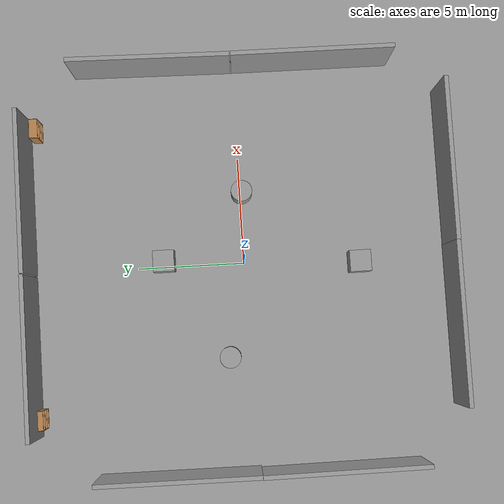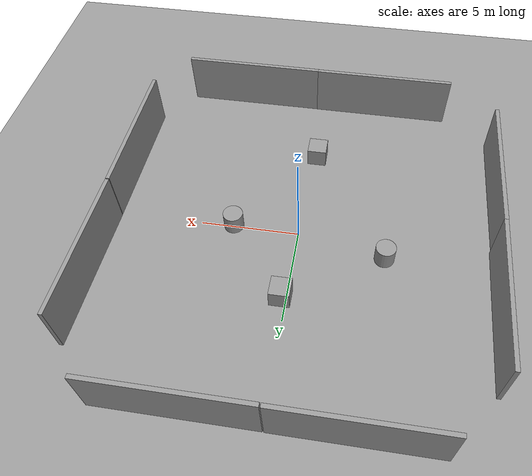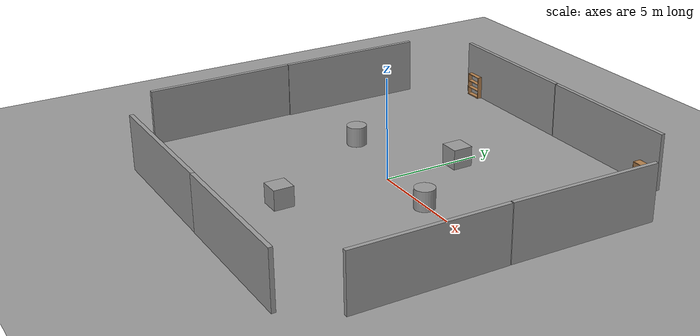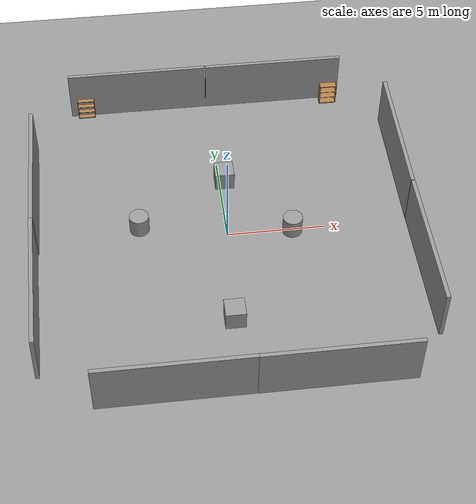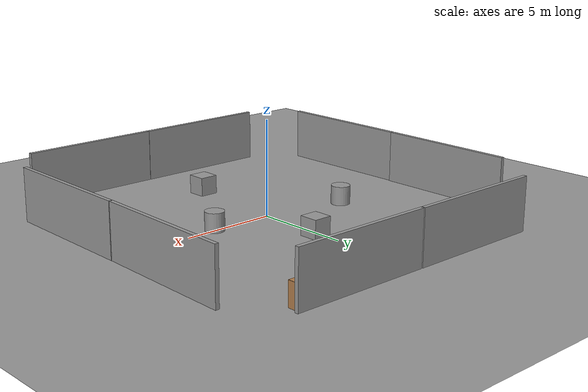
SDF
<sdf version="1.6">
 <world name="default">
  <light name="sun" type="directional">
   <pose>0 0 10 0 -0 0</pose>
   <diffuse>0.8 0.8 0.8 1</diffuse>
   <specular>0.2 0.2 0.2 1</specular>
   <attenuation>
    <range>1000</range>
    <constant>0.9</constant>
    <linear>0.01</linear>
    <quadratic>0.001</quadratic>
   </attenuation>
   <direction>0.5 0.1 -0.9</direction>
  </light>
  <scene><ambient>0.4 0.4 0.4 1</ambient><background>0.7 0.7 0.7 1</background><shadows>1</shadows></scene>
  <physics name="default_physics" default="0" type="ode">
   <max_step_size>0.01</max_step_size>
   <real_time_factor>1</real_time_factor>
   <real_time_update_rate>100</real_time_update_rate>
  </physics>
  <model name="ground_plane_0">
   <static>1</static>
   <link name="link">
    <collision name="collision">
     <geometry><plane><normal>0 0 1</normal><size>100 100</size></plane></geometry>
     <surface><friction><ode><mu>100</mu><mu2>50</mu2></ode></friction></surface>
    </collision>
    <visual name="visual">
     <cast_shadows>0</cast_shadows>
     <geometry><plane><normal>0 0 1</normal><size>100 100</size></plane></geometry>
     <material>
      <script><uri>file://media/materials/scripts/gazebo.material</uri><name>Gazebo/Grey</name></script>
     </material>
    </visual>
    <velocity_decay><linear>0</linear><angular>0</angular></velocity_decay>
   </link>
   <pose>0.497681 0 0 0 -0 0</pose>
  </model>
  <gravity>0 0 -9.8</gravity>
  <magnetic_field>6e-06 2.3e-05 -4.2e-05</magnetic_field>
  <atmosphere type="adiabatic"/>
  <audio><device>default</device></audio>
  <spherical_coordinates>
   <surface_model>EARTH_WGS84</surface_model>
   <latitude_deg>0</latitude_deg>
   <longitude_deg>0</longitude_deg>
   <elevation>0</elevation>
   <heading_deg>0</heading_deg>
  </spherical_coordinates>
  <model name="grey_wall">
   <static>1</static>
   <link name="link">
    <pose>0 0 1.4 0 -0 0</pose>
    <collision name="collision"><geometry><box><size>7.5 0.2 2.8</size></box></geometry></collision>
    <visual name="visual">
     <cast_shadows>0</cast_shadows>
     <geometry><box><size>7.5 0.2 2.8</size></box></geometry>
     <material>
      <script>
       <uri>model://grey_wall/materials/scripts</uri>
       <uri>model://grey_wall/materials/textures</uri>
       <name>vrc/grey_wall</name>
      </script>
     </material>
    </visual>
   </link>
   <pose>3.68693 9.96035 0 0 -0 0</pose>
  </model>
  <model name="grey_wall_0">
   <static>1</static>
   <link name="link">
    <pose>0 0 1.4 0 -0 0</pose>
    <collision name="collision"><geometry><box><size>7.5 0.2 2.8</size></box></geometry></collision>
    <visual name="visual">
     <cast_shadows>0</cast_shadows>
     <geometry><box><size>7.5 0.2 2.8</size></box></geometry>
     <material>
      <script>
       <uri>model://grey_wall/materials/scripts</uri>
       <uri>model://grey_wall/materials/textures</uri>
       <name>vrc/grey_wall</name>
      </script>
     </material>
    </visual>
   </link>
   <pose>-3.86789 9.97033 0 0 -0 0</pose>
  </model>
  <model name="grey_wall_1">
   <static>1</static>
   <link name="link">
    <pose>0 0 1.4 0 -0 0</pose>
    <collision name="collision"><geometry><box><size>7.5 0.2 2.8</size></box></geometry></collision>
    <visual name="visual">
     <cast_shadows>0</cast_shadows>
     <geometry><box><size>7.5 0.2 2.8</size></box></geometry>
     <material>
      <script>
       <uri>model://grey_wall/materials/scripts</uri>
       <uri>model://grey_wall/materials/textures</uri>
       <name>vrc/grey_wall</name>
      </script>
     </material>
    </visual>
   </link>
   <pose>-3.44109 -9.61424 0 0 -0 0</pose>
  </model>
  <model name="grey_wall_2">
   <static>1</static>
   <link name="link">
    <pose>0 0 1.4 0 -0 0</pose>
    <collision name="collision"><geometry><box><size>7.5 0.2 2.8</size></box></geometry></collision>
    <visual name="visual">
     <cast_shadows>0</cast_shadows>
     <geometry><box><size>7.5 0.2 2.8</size></box></geometry>
     <material>
      <script>
       <uri>model://grey_wall/materials/scripts</uri>
       <uri>model://grey_wall/materials/textures</uri>
       <name>vrc/grey_wall</name>
      </script>
     </material>
    </visual>
   </link>
   <pose>4.01976 -9.62803 0 0 -0 0</pose>
  </model>
  <model name="grey_wall_3">
   <static>1</static>
   <link name="link">
    <pose>0 0 1.4 0 -0 0</pose>
    <collision name="collision"><geometry><box><size>7.5 0.2 2.8</size></box></geometry></collision>
    <visual name="visual">
     <cast_shadows>0</cast_shadows>
     <geometry><box><size>7.5 0.2 2.8</size></box></geometry>
     <material>
      <script>
       <uri>model://grey_wall/materials/scripts</uri>
       <uri>model://grey_wall/materials/textures</uri>
       <name>vrc/grey_wall</name>
      </script>
     </material>
    </visual>
   </link>
   <pose>-9.64139 3.4838 0 0 -0 1.56583</pose>
  </model>
  <model name="grey_wall_4">
   <static>1</static>
   <link name="link">
    <pose>0 0 1.4 0 -0 0</pose>
    <collision name="collision"><geometry><box><size>7.5 0.2 2.8</size></box></geometry></collision>
    <visual name="visual">
     <cast_shadows>0</cast_shadows>
     <geometry><box><size>7.5 0.2 2.8</size></box></geometry>
     <material>
      <script>
       <uri>model://grey_wall/materials/scripts</uri>
       <uri>model://grey_wall/materials/textures</uri>
       <name>vrc/grey_wall</name>
      </script>
     </material>
    </visual>
   </link>
   <pose>-9.69508 -4.01846 -1e-06 -0.017271 -0 -1.56424</pose>
  </model>
  <model name="grey_wall_5">
   <static>1</static>
   <link name="link">
    <pose>0 0 1.4 0 -0 0</pose>
    <collision name="collision"><geometry><box><size>7.5 0.2 2.8</size></box></geometry></collision>
    <visual name="visual">
     <cast_shadows>0</cast_shadows>
     <geometry><box><size>7.5 0.2 2.8</size></box></geometry>
     <material>
      <script>
       <uri>model://grey_wall/materials/scripts</uri>
       <uri>model://grey_wall/materials/textures</uri>
       <name>vrc/grey_wall</name>
      </script>
     </material>
    </visual>
   </link>
   <pose>9.44394 3.87094 0 0 0 -1.59168</pose>
  </model>
  <model name="grey_wall_6">
   <static>1</static>
   <link name="link">
    <pose>0 0 1.4 0 -0 0</pose>
    <collision name="collision"><geometry><box><size>7.5 0.2 2.8</size></box></geometry></collision>
    <visual name="visual">
     <cast_shadows>0</cast_shadows>
     <geometry><box><size>7.5 0.2 2.8</size></box></geometry>
     <material>
      <script>
       <uri>model://grey_wall/materials/scripts</uri>
       <uri>model://grey_wall/materials/textures</uri>
       <name>vrc/grey_wall</name>
      </script>
     </material>
    </visual>
   </link>
   <pose>9.34342 -3.67356 0 0 -0 1.56313</pose>
  </model>
  <model name="unit_box">
   <pose>-0.264052 -5.44425 0.49907 -0.0001 0 0</pose>
   <link name="link">
    <inertial>
     <mass>1</mass>
     <inertia>
      <ixx>0.166667</ixx>
      <ixy>0</ixy>
      <ixz>0</ixz>
      <iyy>0.166667</iyy>
      <iyz>0</iyz>
      <izz>0.166667</izz>
     </inertia>
    </inertial>
    <collision name="collision"><geometry><box><size>1 1 1</size></box></geometry></collision>
    <visual name="visual">
     <geometry><box><size>1 1 1</size></box></geometry>
     <material>
      <script><name>Gazebo/Grey</name><uri>file://media/materials/scripts/gazebo.material</uri></script>
     </material>
    </visual>
   </link>
  </model>
  <model name="unit_box_0">
   <pose>0.264361 3.75468 0.5 0 0 -9e-06</pose>
   <link name="link">
    <inertial>
     <mass>1</mass>
     <inertia>
      <ixx>0.166667</ixx>
      <ixy>0</ixy>
      <ixz>0</ixz>
      <iyy>0.166667</iyy>
      <iyz>0</iyz>
      <izz>0.166667</izz>
     </inertia>
    </inertial>
    <collision name="collision"><geometry><box><size>1 1 1</size></box></geometry></collision>
    <visual name="visual">
     <geometry><box><size>1 1 1</size></box></geometry>
     <material>
      <script><name>Gazebo/Grey</name><uri>file://media/materials/scripts/gazebo.material</uri></script>
     </material>
    </visual>
   </link>
  </model>
  <model name="unit_cylinder">
   <pose>-4.41086 0.876121 0.499824 -0.000249 -0.000249 -0.000197</pose>
   <link name="link">
    <inertial>
     <mass>1</mass>
     <inertia><ixx>0.145833</ixx><ixy>0</ixy><ixz>0</ixz><iyy>0.145833</iyy><iyz>0</iyz><izz>0.125</izz></inertia>
    </inertial>
    <collision name="collision">
     <geometry><cylinder><radius>0.5</radius><length>1</length></cylinder></geometry>
    </collision>
    <visual name="visual">
     <geometry><cylinder><radius>0.5</radius><length>1</length></cylinder></geometry>
     <material>
      <script><name>Gazebo/Grey</name><uri>file://media/materials/scripts/gazebo.material</uri></script>
     </material>
    </visual>
   </link>
  </model>
  <model name="unit_cylinder_0">
   <pose>3.34291 -0.081136 0.49912 0 0 -0.000197</pose>
   <link name="link">
    <inertial>
     <mass>1</mass>
     <inertia><ixx>0.145833</ixx><ixy>0</ixy><ixz>0</ixz><iyy>0.145833</iyy><iyz>0</iyz><izz>0.125</izz></inertia>
    </inertial>
    <collision name="collision">
     <geometry><cylinder><radius>0.5</radius><length>1</length></cylinder></geometry>
    </collision>
    <visual name="visual">
     <geometry><cylinder><radius>0.5</radius><length>1</length></cylinder></geometry>
     <material>
      <script><name>Gazebo/Grey</name><uri>file://media/materials/scripts/gazebo.material</uri></script>
     </material>
    </visual>
   </link>
  </model>
  <model name="ball_bearing">
   <link name="link">
    <pose>0 0 0.003 0 -0 0</pose>
    <inertial>
     <mass>0.0011</mass>
     <inertia>
      <ixx>3.96e-09</ixx>
      <ixy>0</ixy>
      <ixz>0</ixz>
      <iyy>3.96e-09</iyy>
      <iyz>0</iyz>
      <izz>3.96e-09</izz>
     </inertia>
    </inertial>
    <collision name="collision">
     <geometry><sphere><radius>0.003</radius></sphere></geometry>
     <surface>
      <contact>
       <poissons_ratio>0.305</poissons_ratio>
       <elastic_modulus>2e+11</elastic_modulus>
       <ode><kp>100000</kp><kd>100</kd><max_vel>100</max_vel><min_depth>0.001</min_depth></ode>
      </contact>
      <friction>
       <torsional>
        <coefficient>1</coefficient>
        <use_patch_radius>0</use_patch_radius>
        <surface_radius>0.01</surface_radius>
       </torsional>
      </friction>
     </surface>
    </collision>
    <visual name="visual">
     <geometry><sphere><radius>0.003</radius></sphere></geometry>
     <material>
      <script><uri>file://media/materials/scripts/gazebo.material</uri><name>Gazebo/Grey</name></script>
     </material>
    </visual>
    <velocity_decay><linear>0</linear><angular>0.005</angular></velocity_decay>
   </link>
   <pose>-2.4778 -6.70767 -0.001 0 -0 0</pose>
  </model>
  <model name="ball_bearing_0">
   <link name="link">
    <pose>0 0 0.003 0 -0 0</pose>
    <inertial>
     <mass>0.0011</mass>
     <inertia>
      <ixx>3.96e-09</ixx>
      <ixy>0</ixy>
      <ixz>0</ixz>
      <iyy>3.96e-09</iyy>
      <iyz>0</iyz>
      <izz>3.96e-09</izz>
     </inertia>
    </inertial>
    <collision name="collision">
     <geometry><sphere><radius>0.003</radius></sphere></geometry>
     <surface>
      <contact>
       <poissons_ratio>0.305</poissons_ratio>
       <elastic_modulus>2e+11</elastic_modulus>
       <ode><kp>100000</kp><kd>100</kd><max_vel>100</max_vel><min_depth>0.001</min_depth></ode>
      </contact>
      <friction>
       <torsional>
        <coefficient>1</coefficient>
        <use_patch_radius>0</use_patch_radius>
        <surface_radius>0.01</surface_radius>
       </torsional>
      </friction>
     </surface>
    </collision>
    <visual name="visual">
     <geometry><sphere><radius>0.003</radius></sphere></geometry>
     <material>
      <script><uri>file://media/materials/scripts/gazebo.material</uri><name>Gazebo/Grey</name></script>
     </material>
    </visual>
    <velocity_decay><linear>0</linear><angular>0.005</angular></velocity_decay>
   </link>
   <pose>-1.16268 -6.09287 -0.001 0 -0 0</pose>
  </model>
  <model name="bookshelf">
   <static>1</static>
   <link name="link">
    <inertial><mass>1</mass></inertial>
    <collision name="back">
     <pose>0 0.005 0.6 0 -0 0</pose>
     <geometry><box><size>0.9 0.01 1.2</size></box></geometry>
    </collision>
    <visual name="visual1">
     <pose>0 0.005 0.6 0 -0 0</pose>
     <geometry><box><size>0.9 0.01 1.2</size></box></geometry>
     <material>
      <script><uri>file://media/materials/scripts/gazebo.material</uri><name>Gazebo/Wood</name></script>
     </material>
    </visual>
    <collision name="left_side">
     <pose>0.45 -0.195 0.6 0 -0 0</pose>
     <geometry><box><size>0.02 0.4 1.2</size></box></geometry>
    </collision>
    <visual name="visual2">
     <pose>0.45 -0.195 0.6 0 -0 0</pose>
     <geometry><box><size>0.02 0.4 1.2</size></box></geometry>
     <material>
      <script><uri>file://media/materials/scripts/gazebo.material</uri><name>Gazebo/Wood</name></script>
     </material>
    </visual>
    <collision name="right_side">
     <pose>-0.45 -0.195 0.6 0 -0 0</pose>
     <geometry><box><size>0.02 0.4 1.2</size></box></geometry>
    </collision>
    <visual name="visual3">
     <pose>-0.45 -0.195 0.6 0 -0 0</pose>
     <geometry><box><size>0.02 0.4 1.2</size></box></geometry>
     <material>
      <script><uri>file://media/materials/scripts/gazebo.material</uri><name>Gazebo/Wood</name></script>
     </material>
    </visual>
    <collision name="bottom">
     <pose>0 -0.195 0.03 0 -0 0</pose>
     <geometry><box><size>0.88 0.4 0.06</size></box></geometry>
    </collision>
    <visual name="visual4">
     <pose>0 -0.195 0.03 0 -0 0</pose>
     <geometry><box><size>0.88 0.4 0.06</size></box></geometry>
     <material>
      <script><uri>file://media/materials/scripts/gazebo.material</uri><name>Gazebo/Wood</name></script>
     </material>
    </visual>
    <collision name="top">
     <pose>0 -0.195 1.19 0 -0 0</pose>
     <geometry><box><size>0.88 0.4 0.02</size></box></geometry>
    </collision>
    <visual name="visual5">
     <pose>0 -0.195 1.19 0 -0 0</pose>
     <geometry><box><size>0.88 0.4 0.02</size></box></geometry>
     <material>
      <script><uri>file://media/materials/scripts/gazebo.material</uri><name>Gazebo/Wood</name></script>
     </material>
    </visual>
    <collision name="low_shelf">
     <pose>0 -0.195 0.43 0 -0 0</pose>
     <geometry><box><size>0.88 0.4 0.02</size></box></geometry>
    </collision>
    <visual name="visual6">
     <pose>0 -0.195 0.43 0 -0 0</pose>
     <geometry><box><size>0.88 0.4 0.02</size></box></geometry>
     <material>
      <script><uri>file://media/materials/scripts/gazebo.material</uri><name>Gazebo/Wood</name></script>
     </material>
    </visual>
    <collision name="high_shelf">
     <pose>0 -0.195 0.8 0 -0 0</pose>
     <geometry><box><size>0.88 0.4 0.02</size></box></geometry>
    </collision>
    <visual name="visual7">
     <pose>0 -0.195 0.8 0 -0 0</pose>
     <geometry><box><size>0.88 0.4 0.02</size></box></geometry>
     <material>
      <script><uri>file://media/materials/scripts/gazebo.material</uri><name>Gazebo/Wood</name></script>
     </material>
    </visual>
   </link>
   <pose>-6.78193 10.0148 0 0 -0 0</pose>
  </model>
  <model name="bookshelf_0">
   <static>1</static>
   <link name="link">
    <inertial><mass>1</mass></inertial>
    <collision name="back">
     <pose>0 0.005 0.6 0 -0 0</pose>
     <geometry><box><size>0.9 0.01 1.2</size></box></geometry>
    </collision>
    <visual name="visual1">
     <pose>0 0.005 0.6 0 -0 0</pose>
     <geometry><box><size>0.9 0.01 1.2</size></box></geometry>
     <material>
      <script><uri>file://media/materials/scripts/gazebo.material</uri><name>Gazebo/Wood</name></script>
     </material>
    </visual>
    <collision name="left_side">
     <pose>0.45 -0.195 0.6 0 -0 0</pose>
     <geometry><box><size>0.02 0.4 1.2</size></box></geometry>
    </collision>
    <visual name="visual2">
     <pose>0.45 -0.195 0.6 0 -0 0</pose>
     <geometry><box><size>0.02 0.4 1.2</size></box></geometry>
     <material>
      <script><uri>file://media/materials/scripts/gazebo.material</uri><name>Gazebo/Wood</name></script>
     </material>
    </visual>
    <collision name="right_side">
     <pose>-0.45 -0.195 0.6 0 -0 0</pose>
     <geometry><box><size>0.02 0.4 1.2</size></box></geometry>
    </collision>
    <visual name="visual3">
     <pose>-0.45 -0.195 0.6 0 -0 0</pose>
     <geometry><box><size>0.02 0.4 1.2</size></box></geometry>
     <material>
      <script><uri>file://media/materials/scripts/gazebo.material</uri><name>Gazebo/Wood</name></script>
     </material>
    </visual>
    <collision name="bottom">
     <pose>0 -0.195 0.03 0 -0 0</pose>
     <geometry><box><size>0.88 0.4 0.06</size></box></geometry>
    </collision>
    <visual name="visual4">
     <pose>0 -0.195 0.03 0 -0 0</pose>
     <geometry><box><size>0.88 0.4 0.06</size></box></geometry>
     <material>
      <script><uri>file://media/materials/scripts/gazebo.material</uri><name>Gazebo/Wood</name></script>
     </material>
    </visual>
    <collision name="top">
     <pose>0 -0.195 1.19 0 -0 0</pose>
     <geometry><box><size>0.88 0.4 0.02</size></box></geometry>
    </collision>
    <visual name="visual5">
     <pose>0 -0.195 1.19 0 -0 0</pose>
     <geometry><box><size>0.88 0.4 0.02</size></box></geometry>
     <material>
      <script><uri>file://media/materials/scripts/gazebo.material</uri><name>Gazebo/Wood</name></script>
     </material>
    </visual>
    <collision name="low_shelf">
     <pose>0 -0.195 0.43 0 -0 0</pose>
     <geometry><box><size>0.88 0.4 0.02</size></box></geometry>
    </collision>
    <visual name="visual6">
     <pose>0 -0.195 0.43 0 -0 0</pose>
     <geometry><box><size>0.88 0.4 0.02</size></box></geometry>
     <material>
      <script><uri>file://media/materials/scripts/gazebo.material</uri><name>Gazebo/Wood</name></script>
     </material>
    </visual>
    <collision name="high_shelf">
     <pose>0 -0.195 0.8 0 -0 0</pose>
     <geometry><box><size>0.88 0.4 0.02</size></box></geometry>
    </collision>
    <visual name="visual7">
     <pose>0 -0.195 0.8 0 -0 0</pose>
     <geometry><box><size>0.88 0.4 0.02</size></box></geometry>
     <material>
      <script><uri>file://media/materials/scripts/gazebo.material</uri><name>Gazebo/Wood</name></script>
     </material>
    </visual>
   </link>
   <pose>6.82917 9.72181 0 0 -0 0</pose>
  </model>
  <model name="ball_bearing_1">
   <link name="link">
    <pose>0 0 0.003 0 -0 0</pose>
    <inertial>
     <mass>0.0011</mass>
     <inertia>
      <ixx>3.96e-09</ixx>
      <ixy>0</ixy>
      <ixz>0</ixz>
      <iyy>3.96e-09</iyy>
      <iyz>0</iyz>
      <izz>3.96e-09</izz>
     </inertia>
    </inertial>
    <collision name="collision">
     <geometry><sphere><radius>0.003</radius></sphere></geometry>
     <surface>
      <contact>
       <poissons_ratio>0.305</poissons_ratio>
       <elastic_modulus>2e+11</elastic_modulus>
       <ode><kp>100000</kp><kd>100</kd><max_vel>100</max_vel><min_depth>0.001</min_depth></ode>
      </contact>
      <friction>
       <torsional>
        <coefficient>1</coefficient>
        <use_patch_radius>0</use_patch_radius>
        <surface_radius>0.01</surface_radius>
       </torsional>
      </friction>
     </surface>
    </collision>
    <visual name="visual">
     <geometry><sphere><radius>0.003</radius></sphere></geometry>
     <material>
      <script><uri>file://media/materials/scripts/gazebo.material</uri><name>Gazebo/Grey</name></script>
     </material>
    </visual>
    <velocity_decay><linear>0</linear><angular>0.005</angular></velocity_decay>
   </link>
   <pose>6.03884 -6.05937 -0.000545 0 -0 0</pose>
  </model>
 </world>
</sdf>
